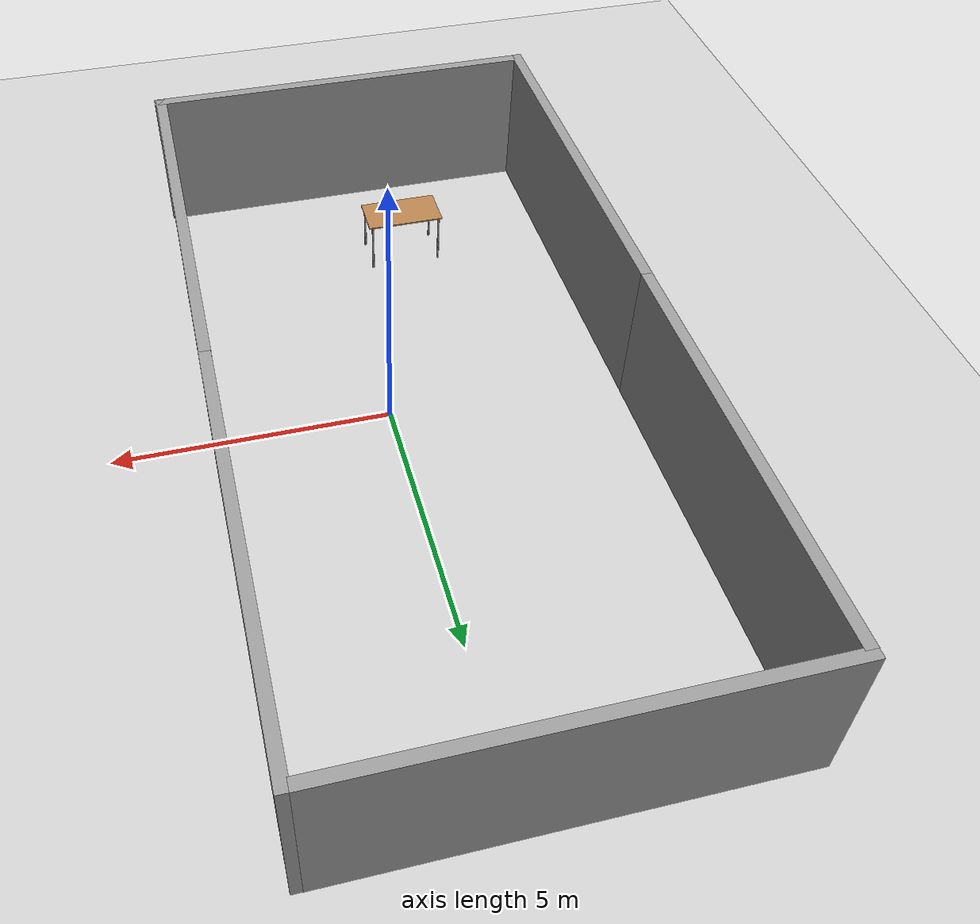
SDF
<sdf version="1.9">
 <world name="empty">
  <physics name="1ms" type="ignored">
   <max_step_size>0.001</max_step_size>
   <real_time_factor>1</real_time_factor>
   <real_time_update_rate>1000</real_time_update_rate>
  </physics>
  <plugin name="gz::sim::systems::Physics" filename="ignition-gazebo-physics-system"/>
  <plugin name="gz::sim::systems::UserCommands" filename="ignition-gazebo-user-commands-system"/>
  <plugin name="gz::sim::systems::SceneBroadcaster" filename="ignition-gazebo-scene-broadcaster-system"/>
  <plugin name="gz::sim::systems::Contact" filename="ignition-gazebo-contact-system"/>
  <gravity>0 0 -9.8</gravity>
  <magnetic_field>6e-06 2.3e-05 -4.2e-05</magnetic_field>
  <atmosphere type="adiabatic"/>
  <scene><ambient>0.4 0.4 0.4 1</ambient><background>0.7 0.7 0.7 1</background><shadows>true</shadows></scene>
  <model name="ground_plane">
   <static>true</static>
   <link name="link">
    <collision name="collision">
     <geometry><plane><normal>0 0 1</normal><size>100 100</size></plane></geometry>
    </collision>
    <visual name="visual">
     <geometry><plane><normal>0 0 1</normal><size>100 100</size></plane></geometry>
     <material>
      <ambient>0.8 0.8 0.8 1</ambient>
      <diffuse>0.8 0.8 0.8 1</diffuse>
      <specular>0.8 0.8 0.8 1</specular>
     </material>
    </visual>
    <inertial>
     <mass>1</mass>
     <inertia><ixx>1</ixx><ixy>0</ixy><ixz>0</ixz><iyy>1</iyy><iyz>0</iyz><izz>1</izz></inertia>
    </inertial>
   </link>
  </model>
  <model name="grey_wall">
   <static>true</static>
   <link name="link">
    <pose>0 0 1.4 0 -0 0</pose>
    <collision name="collision"><geometry><box><size>7.5 0.2 2.8</size></box></geometry></collision>
    <visual name="visual">
     <cast_shadows>false</cast_shadows>
     <geometry><box><size>7.5 0.2 2.8</size></box></geometry>
     <material>
      <script>
       <uri>https://fuel.gazebosim.org/1.0/openrobotics/models/grey wall/3/files/materials/scripts</uri>
       <uri>https://fuel.gazebosim.org/1.0/openrobotics/models/grey wall/3/files/materials/textures</uri>
       <name>vrc/grey_wall</name>
      </script>
     </material>
    </visual>
    <inertial>
     <mass>1</mass>
     <inertia><ixx>1</ixx><ixy>0</ixy><ixz>0</ixz><iyy>1</iyy><iyz>0</iyz><izz>1</izz></inertia>
    </inertial>
   </link>
   <pose>-0.704852 7.95896 0 0 -0 0</pose>
  </model>
  <model name="grey_wall_0">
   <static>true</static>
   <link name="link">
    <pose>0 0 1.4 0 -0 0</pose>
    <collision name="collision"><geometry><box><size>7.5 0.2 2.8</size></box></geometry></collision>
    <visual name="visual">
     <cast_shadows>false</cast_shadows>
     <geometry><box><size>7.5 0.2 2.8</size></box></geometry>
     <material>
      <script>
       <uri>https://fuel.gazebosim.org/1.0/openrobotics/models/grey wall/3/files/materials/scripts</uri>
       <uri>https://fuel.gazebosim.org/1.0/openrobotics/models/grey wall/3/files/materials/textures</uri>
       <name>vrc/grey_wall</name>
      </script>
     </material>
    </visual>
    <inertial>
     <mass>1</mass>
     <inertia><ixx>1</ixx><ixy>0</ixy><ixz>0</ixz><iyy>1</iyy><iyz>0</iyz><izz>1</izz></inertia>
    </inertial>
   </link>
   <pose>3.1144 4.30492 0 0 -0 1.56957</pose>
  </model>
  <model name="grey_wall_1">
   <static>true</static>
   <link name="link">
    <pose>0 0 1.4 0 -0 0</pose>
    <collision name="collision"><geometry><box><size>7.5 0.2 2.8</size></box></geometry></collision>
    <visual name="visual">
     <cast_shadows>false</cast_shadows>
     <geometry><box><size>7.5 0.2 2.8</size></box></geometry>
     <material>
      <script>
       <uri>https://fuel.gazebosim.org/1.0/openrobotics/models/grey wall/3/files/materials/scripts</uri>
       <uri>https://fuel.gazebosim.org/1.0/openrobotics/models/grey wall/3/files/materials/textures</uri>
       <name>vrc/grey_wall</name>
      </script>
     </material>
    </visual>
    <inertial>
     <mass>1</mass>
     <inertia><ixx>1</ixx><ixy>0</ixy><ixz>0</ixz><iyy>1</iyy><iyz>0</iyz><izz>1</izz></inertia>
    </inertial>
   </link>
   <pose>3.09423 -3.19033 0 0 -0 1.56775</pose>
  </model>
  <model name="grey_wall_2">
   <static>true</static>
   <link name="link">
    <pose>0 0 1.4 0 -0 0</pose>
    <collision name="collision"><geometry><box><size>7.5 0.2 2.8</size></box></geometry></collision>
    <visual name="visual">
     <cast_shadows>false</cast_shadows>
     <geometry><box><size>7.5 0.2 2.8</size></box></geometry>
     <material>
      <script>
       <uri>https://fuel.gazebosim.org/1.0/openrobotics/models/grey wall/3/files/materials/scripts</uri>
       <uri>https://fuel.gazebosim.org/1.0/openrobotics/models/grey wall/3/files/materials/textures</uri>
       <name>vrc/grey_wall</name>
      </script>
     </material>
    </visual>
    <inertial>
     <mass>1</mass>
     <inertia><ixx>1</ixx><ixy>0</ixy><ixz>0</ixz><iyy>1</iyy><iyz>0</iyz><izz>1</izz></inertia>
    </inertial>
   </link>
   <pose>-0.540071 -6.86169 0 0 -0 0</pose>
  </model>
  <model name="grey_wall_3">
   <static>true</static>
   <link name="link">
    <pose>0 0 1.4 0 -0 0</pose>
    <collision name="collision"><geometry><box><size>7.5 0.2 2.8</size></box></geometry></collision>
    <visual name="visual">
     <cast_shadows>false</cast_shadows>
     <geometry><box><size>7.5 0.2 2.8</size></box></geometry>
     <material>
      <script>
       <uri>https://fuel.gazebosim.org/1.0/openrobotics/models/grey wall/3/files/materials/scripts</uri>
       <uri>https://fuel.gazebosim.org/1.0/openrobotics/models/grey wall/3/files/materials/textures</uri>
       <name>vrc/grey_wall</name>
      </script>
     </material>
    </visual>
    <inertial>
     <mass>1</mass>
     <inertia><ixx>1</ixx><ixy>0</ixy><ixz>0</ixz><iyy>1</iyy><iyz>0</iyz><izz>1</izz></inertia>
    </inertial>
   </link>
   <pose>-4.35807 4.15186 0 0 0 -1.56984</pose>
  </model>
  <model name="grey_wall_4">
   <static>true</static>
   <link name="link">
    <pose>0 0 1.4 0 -0 0</pose>
    <collision name="collision"><geometry><box><size>7.5 0.2 2.8</size></box></geometry></collision>
    <visual name="visual">
     <cast_shadows>false</cast_shadows>
     <geometry><box><size>7.5 0.2 2.8</size></box></geometry>
     <material>
      <script>
       <uri>https://fuel.gazebosim.org/1.0/openrobotics/models/grey wall/3/files/materials/scripts</uri>
       <uri>https://fuel.gazebosim.org/1.0/openrobotics/models/grey wall/3/files/materials/textures</uri>
       <name>vrc/grey_wall</name>
      </script>
     </material>
    </visual>
    <inertial>
     <mass>1</mass>
     <inertia><ixx>1</ixx><ixy>0</ixy><ixz>0</ixz><iyy>1</iyy><iyz>0</iyz><izz>1</izz></inertia>
    </inertial>
   </link>
   <pose>-4.36064 -3.21933 0 0 0 -1.5714</pose>
  </model>
  <model name="Table">
   <static>true</static>
   <link name="link">
    <collision name="surface">
     <pose>0 0 1.0 0 0 0</pose>
     <geometry><box><size>1.5 0.8 0.03</size></box></geometry>
     <surface><friction><ode><mu>0.59999999999999998</mu><mu2>0.59999999999999998</mu2></ode></friction></surface>
    </collision>
    <visual name="visual1">
     <pose>0 0 1.0 0 0 0</pose>
     <geometry><box><size>1.5 0.8 0.03</size></box></geometry>
     <material>
      <diffuse>1 1 1 1</diffuse>
      <script><uri>file://media/materials/scripts/gazebo.material</uri><name>Gazebo/Wood</name></script>
      <pbr>
       <metal>
        <albedo_map>https://fuel.gazebosim.org/1.0/openrobotics/models/table/4/files/Table_Diffuse.jpg</albedo_map>
       </metal>
      </pbr>
     </material>
    </visual>
    <collision name="front_left_leg">
     <pose>0.68 0.38 0.5 0 0 0</pose>
     <geometry><cylinder><radius>0.02</radius><length>1</length></cylinder></geometry>
    </collision>
    <visual name="front_left_leg">
     <pose>0.68 0.38 0.5 0 0 0</pose>
     <geometry><cylinder><radius>0.02</radius><length>1</length></cylinder></geometry>
     <material>
      <diffuse>0.5 0.5 0.5 1</diffuse>
      <script><uri>file://media/materials/scripts/gazebo.material</uri><name>Gazebo/Grey</name></script>
     </material>
    </visual>
    <collision name="front_right_leg">
     <pose>0.68 -0.38 0.5 0 0 0</pose>
     <geometry><cylinder><radius>0.02</radius><length>1</length></cylinder></geometry>
    </collision>
    <visual name="front_right_leg">
     <pose>0.68 -0.38 0.5 0 0 0</pose>
     <geometry><cylinder><radius>0.02</radius><length>1</length></cylinder></geometry>
     <material>
      <diffuse>0.5 0.5 0.5 1</diffuse>
      <script><uri>file://media/materials/scripts/gazebo.material</uri><name>Gazebo/Grey</name></script>
     </material>
    </visual>
    <collision name="back_right_leg">
     <pose>-0.68 -0.38 0.5 0 0 0</pose>
     <geometry><cylinder><radius>0.02</radius><length>1</length></cylinder></geometry>
    </collision>
    <visual name="back_right_leg">
     <pose>-0.68 -0.38 0.5 0 0 0</pose>
     <geometry><cylinder><radius>0.02</radius><length>1</length></cylinder></geometry>
     <material>
      <diffuse>0.5 0.5 0.5 1</diffuse>
      <script><uri>file://media/materials/scripts/gazebo.material</uri><name>Gazebo/Grey</name></script>
     </material>
    </visual>
    <collision name="back_left_leg">
     <pose>-0.68 0.38 0.5 0 0 0</pose>
     <geometry><cylinder><radius>0.02</radius><length>1</length></cylinder></geometry>
    </collision>
    <visual name="back_left_leg">
     <pose>-0.68 0.38 0.5 0 0 0</pose>
     <geometry><cylinder><radius>0.02</radius><length>1</length></cylinder></geometry>
     <material>
      <diffuse>0.5 0.5 0.5 1</diffuse>
      <script><uri>file://media/materials/scripts/gazebo.material</uri><name>Gazebo/Grey</name></script>
     </material>
    </visual>
    <inertial>
     <mass>1</mass>
     <inertia><ixx>1</ixx><ixy>0</ixy><ixz>0</ixz><iyy>1</iyy><iyz>0</iyz><izz>1</izz></inertia>
    </inertial>
   </link>
   <pose>-1.30148 -4.53374 0 0 -0 0</pose>
  </model>
  <light name="sun" type="directional">
   <pose>0 0 10 0 -0 0</pose>
   <intensity>1</intensity>
   <direction>-0.5 0.1 -0.9</direction>
   <diffuse>0.8 0.8 0.8 1</diffuse>
   <specular>0.2 0.2 0.2 1</specular>
   <attenuation>
    <range>1000</range>
    <linear>0.01</linear>
    <constant>0.90000000000000002</constant>
    <quadratic>0.001</quadratic>
   </attenuation>
   <spot><inner_angle>0</inner_angle><outer_angle>0</outer_angle><falloff>0</falloff></spot>
  </light>
 </world>
</sdf>
